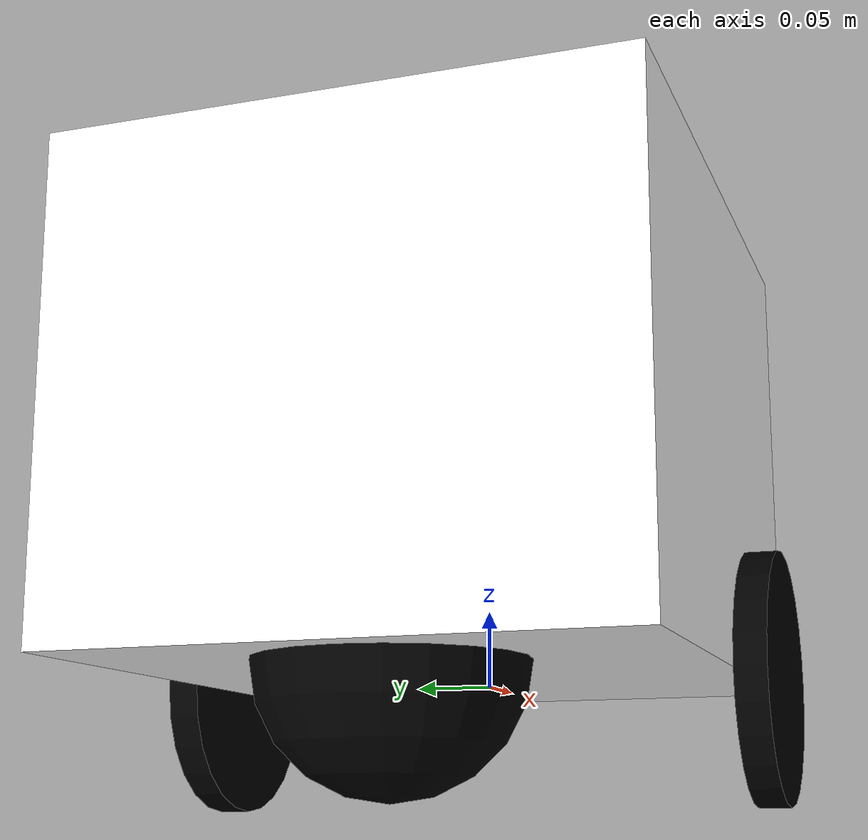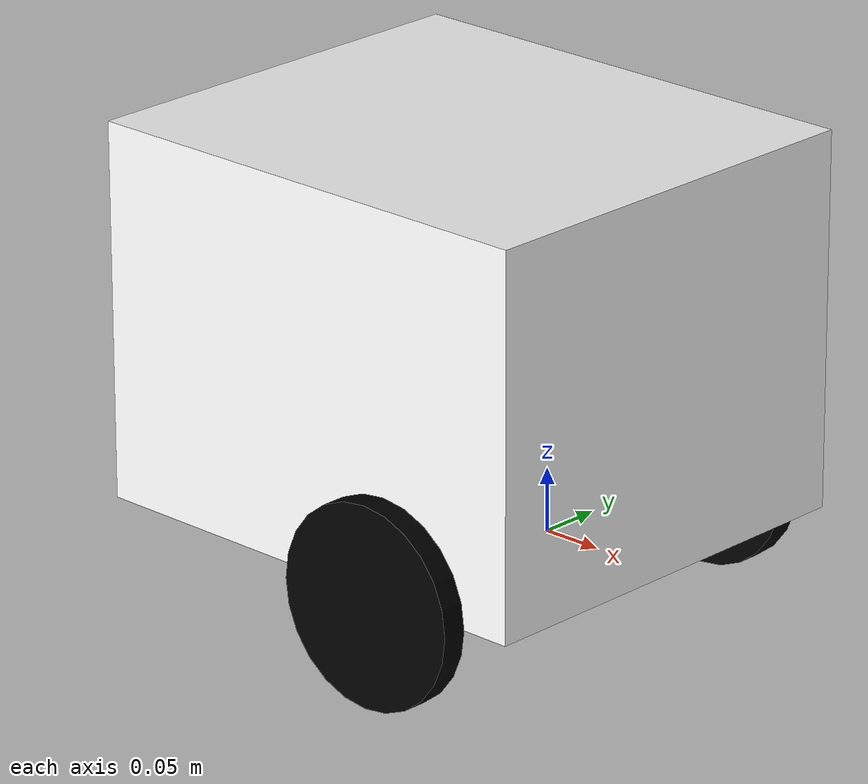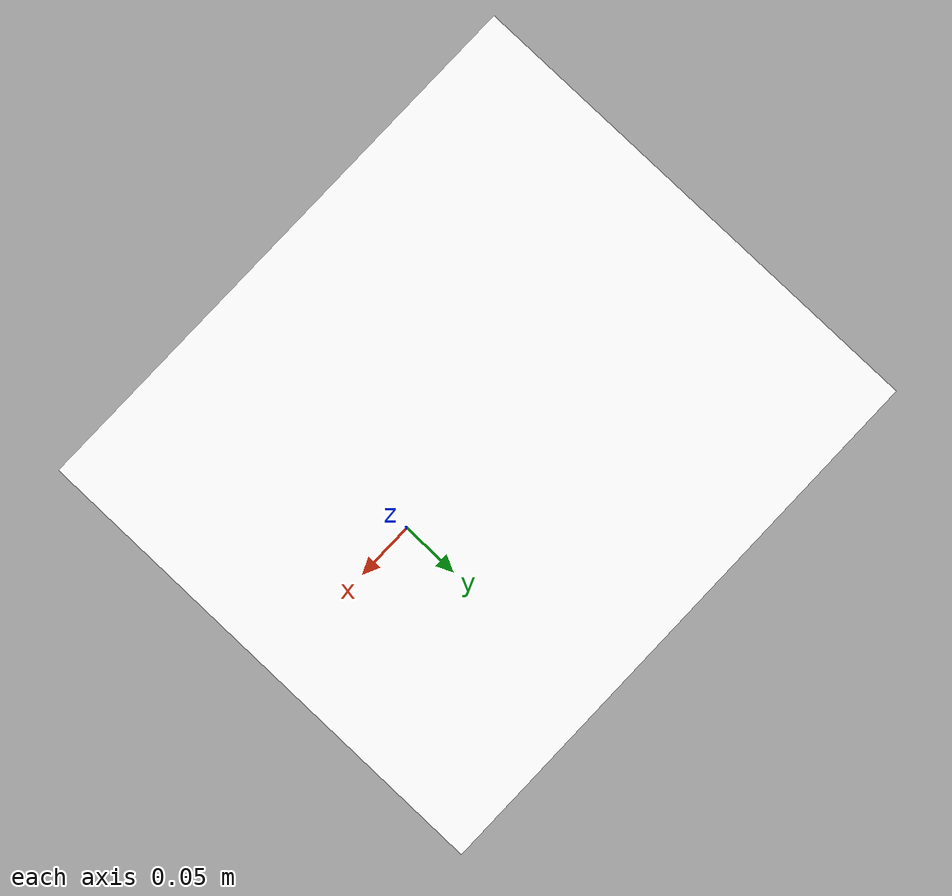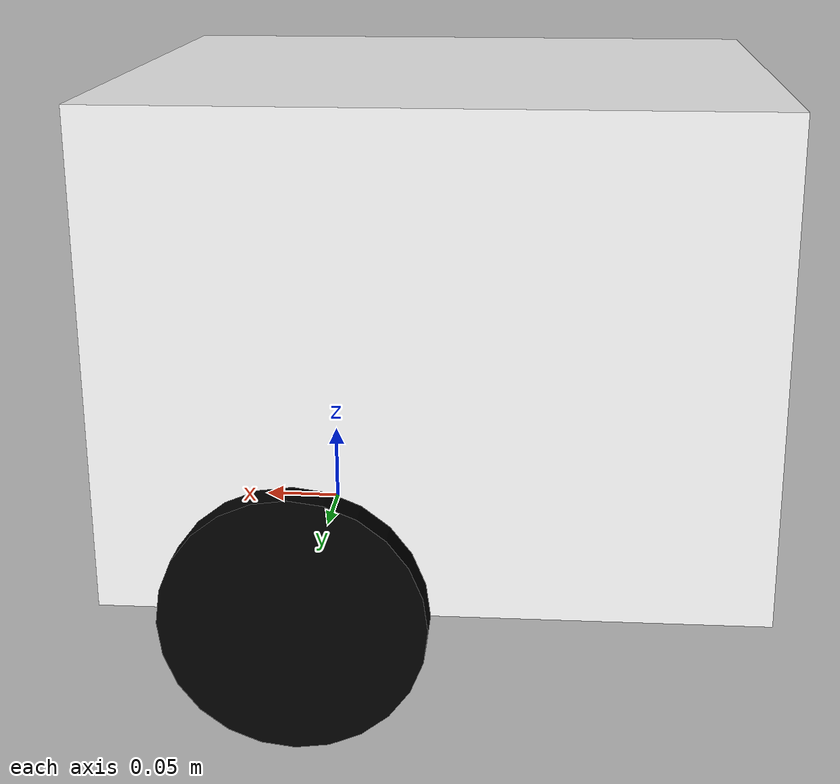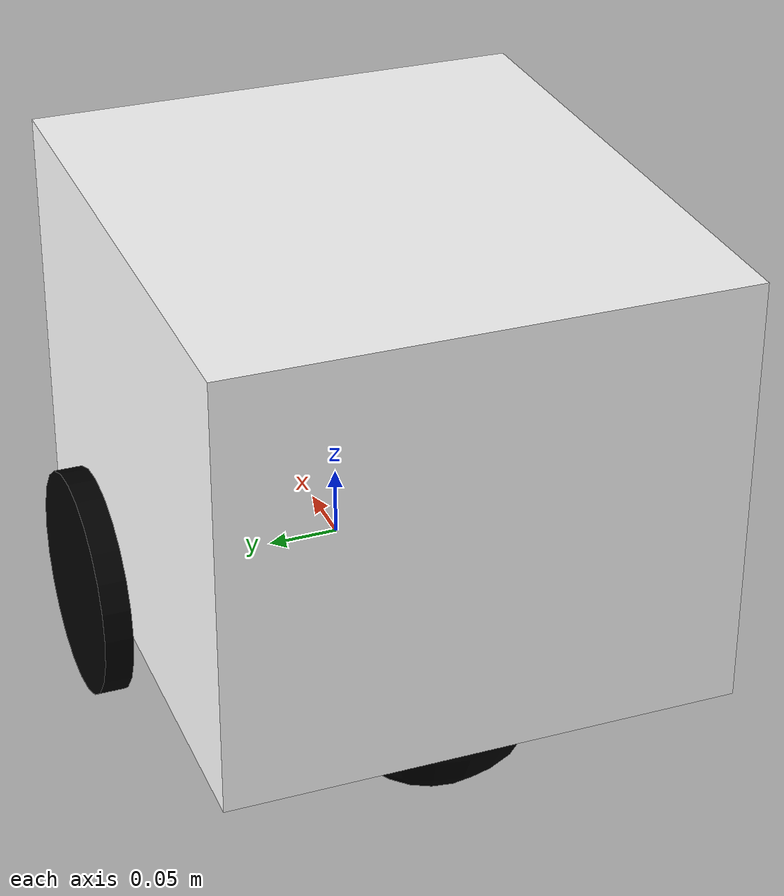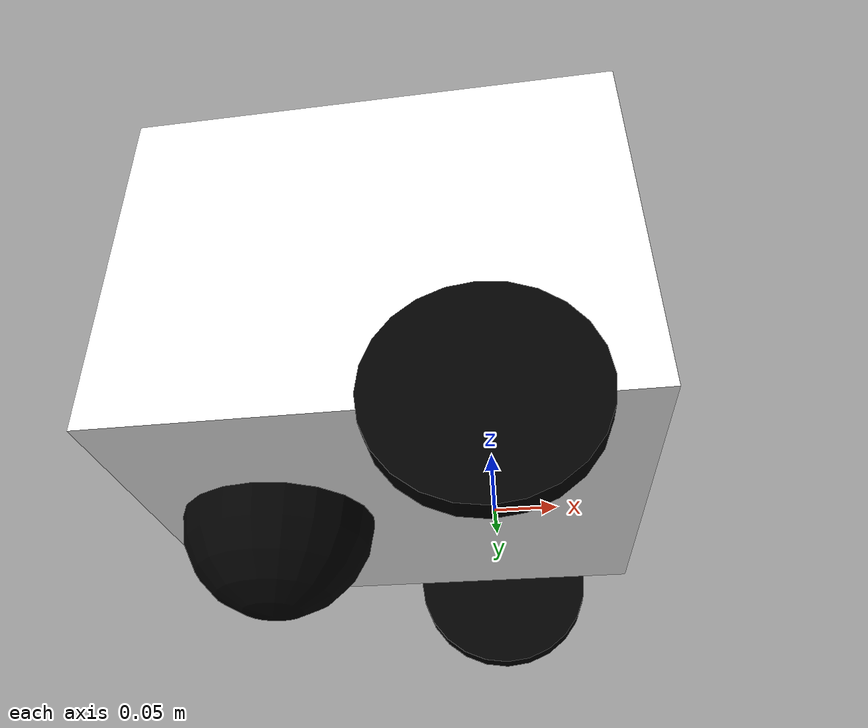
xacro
<?xml version="1.0"?>
<robot xmlns:xacro="http://www.ros.org/wiki/xacro" >

    <xacro:include filename="inertial_macros.xacro"/>

    <material name="white">
        <color rgba="1 1 1 1" />
    </material>

    <material name="black">
        <color rgba="0 0 0 1"/>
    </material>

    <!-- BASE LINK -->
    <link name="base_link"></link>

    <!-- CHASSIS LINK -->
    <joint name="chassis_joint" type="fixed">
        <parent link="base_link"/>
        <child link="chassis"/>
        <origin xyz="-0.2 0 0"/>
    </joint>

    <link name="chassis">
        <visual>
            <origin xyz="0.12 0 0.15"/>
            <geometry>
                <box size="0.4 0.35 0.30"/>
            </geometry>
            <material name="white"/>
        </visual>
        <collision>
            <origin xyz="0.12 0 0.15"/>
            <geometry>
                <box size="0.4 0.35 0.30"/>
            </geometry>
        </collision>
        <xacro:inertial_box mass="0.5" x="0.3" y="0.3" z="0.15">
            <origin xyz="0.12 0 0.15" rpy="0 0 0"/>
        </xacro:inertial_box>
    </link>

    <gazebo reference="chassis">
        <material>Gazebo/White</material>
    </gazebo>

    <!-- LEFT WHEEL LINK -->
    <joint name="left_wheel_joint" type="continuous">
        <parent link="base_link"/>
        <child link="left_wheel"/>
        <origin xyz="0 0.185 0" rpy="-${pi/2} 0 0"/>
        <axis xyz="0 0 1"/>
    </joint>

    <link name="left_wheel">
        <visual>
            <geometry>
                <cylinder radius="0.08" length="0.02"/>
            </geometry>
            <material name="black"/>
        </visual>
        <collision>
            <geometry>
                <sphere radius="0.08"/>
            </geometry>
        </collision>
        <xacro:inertial_cylinder mass="0.1" length="0.02" radius="0.08">
            <origin xyz="0 0 0" rpy="0 0 0"/>
        </xacro:inertial_cylinder>
    </link>

    <gazebo reference="left_wheel">
        <material>Gazebo/Black</material>
    </gazebo>

    <!-- RIGHT WHEEL LINK -->
    <joint name="right_wheel_joint" type="continuous">
        <parent link="base_link"/>
        <child link="right_wheel"/>
        <origin xyz="0 -0.185 0" rpy="${pi/2} 0 0"/>
        <axis xyz="0 0 -1"/>
    </joint>

    <link name="right_wheel">
        <visual>
            <geometry>
                <cylinder radius="0.08" length="0.02"/>
            </geometry>
            <material name="black"/>
        </visual>
        <collision>
            <geometry>
                <sphere radius="0.08"/>
            </geometry>
        </collision>
        <xacro:inertial_cylinder mass="0.1" length="0.02" radius="0.08">
            <origin xyz="0 0 0" rpy="0 0 0"/>
        </xacro:inertial_cylinder>
    </link>

    <gazebo reference="right_wheel">
        <material>Gazebo/Black</material>
    </gazebo>

    <!-- CASTER WHEEL LINK -->
    <joint name="caster_wheel_joint" type="fixed">
        <parent link="chassis"/>
        <child link="caster_wheel"/>
        <origin xyz="0.02 0 0"/>
    </joint>

    <link name="caster_wheel">
        <visual>
            <geometry>
                <sphere radius="0.08"/>
            </geometry>
            <material name="black"/>
        </visual>
        <collision>
            <geometry>
                <sphere radius="0.08"/>
            </geometry>
        </collision>
        <xacro:inertial_sphere mass="0.1" radius="0.08">
            <origin xyz="0 0 0" rpy="0 0 0"/>
        </xacro:inertial_sphere>
    </link>

    <gazebo reference="caster_wheel">
        <material>Gazebo/Black</material>
        <mu1 value="0.01" />
        <mu2 value="0.01" />
    </gazebo>

</robot>
